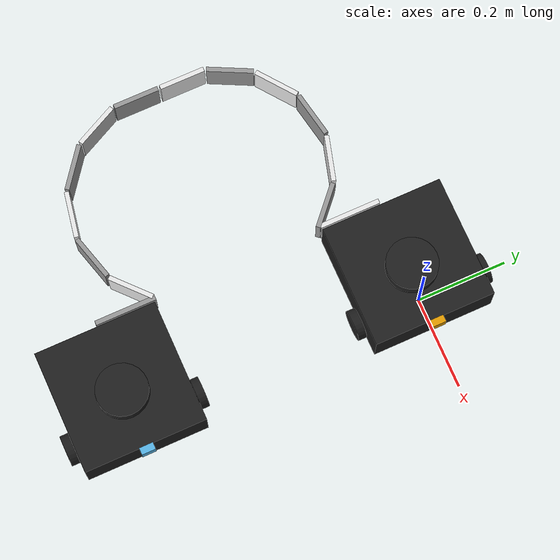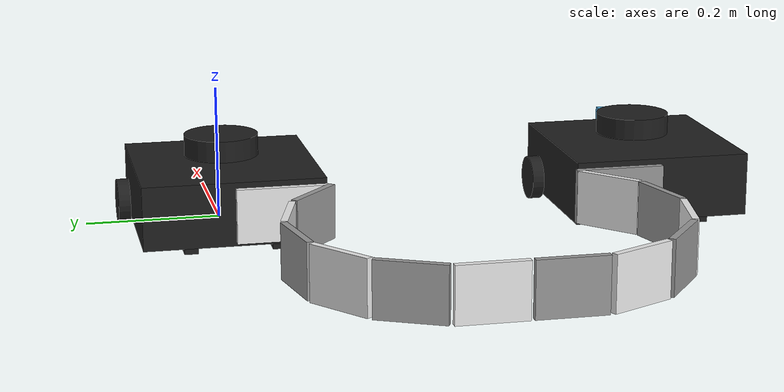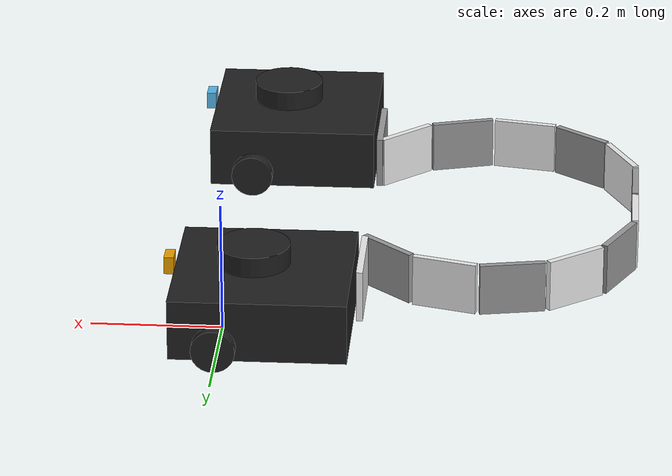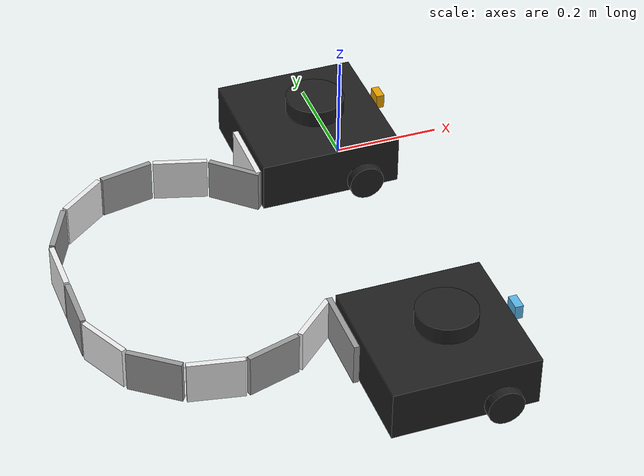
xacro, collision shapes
<?xml version="1.0"?>
<robot name="tethered_turtle" xmlns:xacro="http://ros.org/wiki/xacro">
  <xacro:include filename="$(find turtlebot3_description)/urdf/common_properties.xacro"/>
  <xacro:include filename="$(find turtlebot3_gazebo)/urdf/tethered_turtle.gazebo.xacro"/>
  <xacro:property name="stick_mass" value="0.0005"/> <!-- mass of the stick-->
  <xacro:property name="stick_depth" value="0.01"/>
  <xacro:property name="stick_width" value="0.1"/>
  <xacro:property name="stick_height" value="0.08"/>
  <xacro:property name="rotation_limit" value="3.1415926"/>
  <xacro:property name="effort_limit" value="30"/>
  <xacro:property name="velocity_limit" value="3.1415926"/>
  <xacro:property name="stick_damping" value="0.00001"/>
  <xacro:property name="safety_offset" value="0.005"/>
  <xacro:property name="theta_1" value="-2.306898"/>
  <xacro:property name="theta_2" value="0.4613795775735"/>

  <xacro:macro name="stick2stick" params="name_1 name_2 rotation_angle">
    <joint name="${name_1}_${name_2}" type="revolute">
      <parent link="${name_1}"/>
      <child link="${name_2}"/>
      <origin xyz="0 ${-(stick_width + safety_offset)} 0" rpy="0 0 ${rotation_angle}"/>
      <axis xyz="0 0 1"/>
      <limit lower="${-1.0 * rotation_limit}" upper="${rotation_limit}" effort="${effort_limit}" velocity="${velocity_limit}"/>
      <dynamics damping="${stick_damping}"/>
    </joint>

    <link name="${name_2}">
      <visual>
        <geometry>
	        <box size="${stick_depth} ${stick_width} ${stick_height}"/>
        </geometry>
        <origin xyz="0 ${-(stick_width / 2.0)} 0" rpy="0 0 0"/>
      </visual>

      <collision>
        <origin xyz="0 ${-(stick_width / 2.0)} 0" rpy="0 0 0"/>
        <geometry>
	        <box size="${stick_depth} ${stick_width} ${stick_height}"/>
        </geometry>
      </collision>

      <inertial>
        <origin xyz="0 ${-(stick_width / 2.0)} 0" rpy="0 0 0"/>
        <mass value="${stick_mass}"/>
        <inertia
	        ixx="${stick_mass / 12.0 * (stick_width*stick_width + stick_height*stick_height)}" ixy="0.0" ixz="0.0"
          iyy="${stick_mass / 12.0 * (stick_depth*stick_depth + stick_height*stick_height)}" iyz="0.0"
	        izz="${stick_mass / 12.0 * (stick_width*stick_width + stick_depth*stick_depth)}"/>
      </inertial>
    </link>
  </xacro:macro>

<!-- Turtle1 -->
  <link name="turtle1/base_footprint"/>

  <joint name="turtle1/base_joint" type="fixed">
    <parent link="turtle1/base_footprint"/>
    <child link="turtle1/base_link" />
    <origin xyz="0 0 0.010" rpy="0 0 0"/>
  </joint>

  <link name="turtle1/base_link">
    <visual>
      <origin xyz="-0.064 0 0.0" rpy="0 0 0"/>
      <geometry>
        <mesh filename="package://turtlebot3_description/meshes/bases/waffle_pi_base.stl" scale="0.001 0.001 0.001"/>
      </geometry>
      <material name="light_black"/>
    </visual>

    <collision>
      <origin xyz="-0.064 0 0.047" rpy="0 0 0"/>
      <geometry>
        <box size="0.266 0.266 0.094"/>
      </geometry>
    </collision>

    <inertial>
      <origin xyz="-0.02 0 0" rpy="0 0 0"/>
      <mass value="1.3729096e+00"/>
      <inertia ixx="8.7002718e-03" ixy="-4.7576583e-05" ixz="1.1160499e-04"
               iyy="8.6195418e-03" iyz="-3.5422299e-06"
               izz="1.4612727e-02" />
    </inertial>
  </link>

  <joint name="turtle1/wheel_left_joint" type="continuous">
    <parent link="turtle1/base_link"/>
    <child link="turtle1/wheel_left_link"/>
    <origin xyz="0.0 0.144 0.023" rpy="-1.57 0 0"/>
    <axis xyz="0 0 1"/>
  </joint>

  <transmission name="turtle1/wheel_left_trans">
    <type>transmission_interface/SimpleTransmission</type>
    <joint name="turtle1/wheel_left_joint">
      <hardwareInterface>hardware_interface/EffortJointInterface</hardwareInterface>
    </joint>
    <actuator name="turtle1/wheel_left_joint_motor">
      <hardwareInterface>hardware_interface/EffortJointInterface</hardwareInterface>
      <mechanicalReduction>1</mechanicalReduction>
    </actuator>
  </transmission>

  <link name="turtle1/wheel_left_link">
    <visual>
      <origin xyz="0 0 0" rpy="1.57 0 0"/>
      <geometry>
        <mesh filename="package://turtlebot3_description/meshes/wheels/left_tire.stl" scale="0.001 0.001 0.001"/>
      </geometry>
      <material name="dark"/>
    </visual>

    <collision>
      <origin xyz="0 0 0" rpy="0 0 0"/>
      <geometry>
        <cylinder length="0.018" radius="0.033"/>
      </geometry>
    </collision>

    <inertial>
      <origin xyz="0 0 0" />
      <mass value="2.8498940e-02" />
      <inertia ixx="1.1175580e-05" ixy="-4.2369783e-11" ixz="-5.9381719e-09"
               iyy="1.1192413e-05" iyz="-1.4400107e-11"
               izz="2.0712558e-05" />
      </inertial>
  </link>

  <joint name="turtle1/wheel_right_joint" type="continuous">
    <parent link="turtle1/base_link"/>
    <child link="turtle1/wheel_right_link"/>
    <origin xyz="0.0 -0.144 0.023" rpy="-1.57 0 0"/>
    <axis xyz="0 0 1"/>
  </joint>

  <transmission name="turtle1/wheel_right_trans">
    <type>transmission_interface/SimpleTransmission</type>
    <joint name="turtle1/wheel_right_joint">
      <hardwareInterface>hardware_interface/EffortJointInterface</hardwareInterface>
    </joint>
    <actuator name="turtle1/wheel_right_joint_motor">
      <hardwareInterface>hardware_interface/EffortJointInterface</hardwareInterface>
      <mechanicalReduction>1</mechanicalReduction>
    </actuator>
  </transmission>

  <link name="turtle1/wheel_right_link">
    <visual>
      <origin xyz="0 0 0" rpy="1.57 0 0"/>
      <geometry>
        <mesh filename="package://turtlebot3_description/meshes/wheels/right_tire.stl" scale="0.001 0.001 0.001"/>
      </geometry>
      <material name="dark"/>
    </visual>

    <collision>
      <origin xyz="0 0 0" rpy="0 0 0"/>
      <geometry>
        <cylinder length="0.018" radius="0.033"/>
      </geometry>
    </collision>

    <inertial>
      <origin xyz="0 0 0" />
      <mass value="2.8498940e-02" />
      <inertia ixx="1.1175580e-05" ixy="-4.2369783e-11" ixz="-5.9381719e-09"
               iyy="1.1192413e-05" iyz="-1.4400107e-11"
               izz="2.0712558e-05" />
      </inertial>
  </link>

  <joint name="turtle1/caster_back_right_joint" type="fixed">
    <parent link="turtle1/base_link"/>
    <child link="turtle1/caster_back_right_link"/>
    <origin xyz="-0.177 -0.064 -0.004" rpy="-1.57 0 0"/>
  </joint>

  <link name="turtle1/caster_back_right_link">
    <collision>
      <origin xyz="0 0.001 0" rpy="0 0 0"/>
      <geometry>
        <box size="0.030 0.009 0.020"/>
      </geometry>
    </collision>

    <inertial>
      <origin xyz="0 0 0" />
      <mass value="0.005" />
      <inertia ixx="0.001" ixy="0.0" ixz="0.0"
               iyy="0.001" iyz="0.0"
               izz="0.001" />
    </inertial>
  </link>

  <joint name="turtle1/caster_back_left_joint" type="fixed">
    <parent link="turtle1/base_link"/>
    <child link="turtle1/caster_back_left_link"/>
    <origin xyz="-0.177 0.064 -0.004" rpy="-1.57 0 0"/>
  </joint>

  <link name="turtle1/caster_back_left_link">
    <collision>
      <origin xyz="0 0.001 0" rpy="0 0 0"/>
      <geometry>
        <box size="0.030 0.009 0.020"/>
      </geometry>
    </collision>

    <inertial>
      <origin xyz="0 0 0" />
      <mass value="0.005" />
      <inertia ixx="0.001" ixy="0.0" ixz="0.0"
               iyy="0.001" iyz="0.0"
               izz="0.001" />
    </inertial>
  </link>

  <joint name="turtle1/imu_joint" type="fixed">
    <parent link="turtle1/base_link"/>
    <child link="turtle1/imu_link"/>
    <origin xyz="0.0 0 0.068" rpy="0 0 0"/>
  </joint>

  <link name="turtle1/imu_link"/>

  <joint name="turtle1/scan_joint" type="fixed">
    <parent link="turtle1/base_link"/>
    <child link="turtle1/base_scan"/>
    <origin xyz="-0.064 0 0.122" rpy="0 0 0"/>
  </joint>

  <link name="turtle1/base_scan">
    <visual>
      <origin xyz="0 0 0.0" rpy="0 0 0"/>
      <geometry>
        <mesh filename="package://turtlebot3_description/meshes/sensors/lds.stl" scale="0.001 0.001 0.001"/>
      </geometry>
      <material name="dark"/>
    </visual>

    <collision>
      <origin xyz="0.015 0 -0.0065" rpy="0 0 0"/>
      <geometry>
        <cylinder length="0.0315" radius="0.055"/>
      </geometry>
    </collision>

    <inertial>
      <mass value="0.114" />
      <origin xyz="0 0 0" />
      <inertia ixx="0.001" ixy="0.0" ixz="0.0"
               iyy="0.001" iyz="0.0"
               izz="0.001" />
    </inertial>
  </link>

  <joint name="turtle1/camera_joint" type="fixed">
    <origin xyz="0.073 -0.011 0.084" rpy="0 0 0"/>
    <parent link="turtle1/base_link"/>
    <child link="turtle1/camera_link"/>
  </joint>

  <link name="turtle1/camera_link">
    <collision>
      <origin xyz="0.005 0.011 0.013" rpy="0 0 0"/>
      <geometry>
        <box size="0.015 0.030 0.027"/>
      </geometry>
    </collision>
  </link>

  <joint name="turtle1/camera_rgb_joint" type="fixed">
    <origin xyz="0.003 0.011 0.009" rpy="0 0 0"/>
    <parent link="turtle1/camera_link"/>
    <child link="turtle1/camera_rgb_frame"/>
  </joint>
  <link name="turtle1/camera_rgb_frame"/>

  <joint name="turtle1/camera_rgb_optical_joint" type="fixed">
    <origin xyz="0 0 0" rpy="-1.57 0 -1.57"/>
    <parent link="turtle1/camera_rgb_frame"/>
    <child link="turtle1/camera_rgb_optical_frame"/>
  </joint>
  <link name="turtle1/camera_rgb_optical_frame"/>

  <!--Sticks in between-->
  <joint name="turtle1_stick1" type="revolute">
    <parent link="turtle1/base_footprint"/>
    <child link="stick1"/>
    <origin xyz="${-0.064 - 0.133 - safety_offset - stick_depth/2.0} 0 0.057" rpy="0 0 0"/>
    <axis xyz="0 0 1"/>
    <limit lower="0" upper="0" effort="${effort_limit}" velocity="${velocity_limit}"/>
    <dynamics damping="${stick_damping}"/>
  </joint>

  <link name="stick1">
    <visual>
      <geometry>
	      <box size="${stick_depth} 0.133 ${stick_height}"/>
      </geometry>
      <origin xyz="0 -0.0665 0" rpy="0 0 0"/>
    </visual>
    <collision>
      <origin xyz="0 -0.0665 0" rpy="0 0 0"/>
      <geometry>
	      <box size="${stick_depth} 0.133 ${stick_height}"/>
      </geometry>
    </collision>
    <inertial>
      <origin xyz="0 -0.0665 0" rpy="0 0 0"/>
      <mass value="${stick_mass}"/>
      <inertia
	        ixx="${stick_mass / 12.0 * (stick_width*stick_width + stick_height*stick_height)}" ixy="0.0" ixz="0.0"
          iyy="${stick_mass / 12.0 * (stick_depth*stick_depth + stick_height*stick_height)}" iyz="0.0"
	        izz="${stick_mass / 12.0 * (stick_width*stick_width + stick_depth*stick_depth)}"/>
    </inertial>
  </link>

  <joint name="stick1_stick2" type="revolute">
    <parent link="stick1"/>
    <child link="stick2"/>
    <origin xyz="0 ${-(0.133 + safety_offset)} 0" rpy="0 0 ${theta_1}"/>
    <axis xyz="0 0 1"/>
    <limit lower="${-1.0*rotation_limit}" upper="${rotation_limit}" effort="${effort_limit}" velocity="${velocity_limit}"/>
    <dynamics damping="${stick_damping}"/>
  </joint>

  <link name="stick2">
    <visual>
      <geometry>
	      <box size="${stick_depth} ${stick_width} ${stick_height}"/>
      </geometry>
      <origin xyz="0 ${-(stick_width / 2.0)} 0" rpy="0 0 0"/>
    </visual>

    <collision>
      <origin xyz="0 ${-(stick_width / 2.0)} 0" rpy="0 0 0"/>
      <geometry>
	      <box size="${stick_depth} ${stick_width} ${stick_height}"/>
      </geometry>
    </collision>

    <inertial>
      <origin xyz="0 ${-(stick_width / 2.0)} 0" rpy="0 0 0"/>
      <mass value="${stick_mass}"/>
      <inertia
	      ixx="${stick_mass / 12.0 * (stick_width*stick_width + stick_height*stick_height)}" ixy="0.0" ixz="0.0"
        iyy="${stick_mass / 12.0 * (stick_depth*stick_depth + stick_height*stick_height)}" iyz="0.0"
	      izz="${stick_mass / 12.0 * (stick_width*stick_width + stick_depth*stick_depth)}"/>
    </inertial>
  </link>

  <xacro:stick2stick name_1="stick2" name_2="stick3" rotation_angle="${theta_2}"/>
  <xacro:stick2stick name_1="stick3" name_2="stick4" rotation_angle="${theta_2}"/>
  <xacro:stick2stick name_1="stick4" name_2="stick5" rotation_angle="${theta_2}"/>
  <xacro:stick2stick name_1="stick5" name_2="stick6" rotation_angle="${theta_2}"/>
  <xacro:stick2stick name_1="stick6" name_2="stick7" rotation_angle="${theta_2}"/>
  <xacro:stick2stick name_1="stick7" name_2="stick8" rotation_angle="0"/>
  <xacro:stick2stick name_1="stick8" name_2="stick9" rotation_angle="${theta_2}"/>
  <xacro:stick2stick name_1="stick9" name_2="stick10" rotation_angle="${theta_2}"/>
  <xacro:stick2stick name_1="stick10" name_2="stick11" rotation_angle="${theta_2}"/>
  <xacro:stick2stick name_1="stick11" name_2="stick12" rotation_angle="${theta_2}"/>
  <xacro:stick2stick name_1="stick12" name_2="stick13" rotation_angle="${theta_2}"/>

  <joint name="stick13_stick14" type="revolute">
    <parent link="stick13"/>
    <child link="stick14"/>
    <origin xyz="0 ${-(stick_width + safety_offset)} 0" rpy="0 0 ${theta_1}"/>
    <axis xyz="0 0 1"/>
    <limit lower="${-1.0 * rotation_limit}" upper="${rotation_limit}" effort="${effort_limit}" velocity="${velocity_limit}"/>
    <dynamics damping="${stick_damping}"/>
  </joint>

  <link name="stick14">
    <visual>
      <geometry>
	      <box size="${stick_depth} 0.133 ${stick_height}"/>
      </geometry>
      <origin xyz="0 -0.0665 0" rpy="0 0 0"/>
    </visual>
    <collision>
      <origin xyz="0 -0.0665 0" rpy="0 0 0"/>
      <geometry>
	      <box size="${stick_depth} 0.133 ${stick_height}"/>
      </geometry>
    </collision>
    <inertial>
      <origin xyz="0 -0.0665 0" rpy="0 0 0"/>
      <mass value="${stick_mass}"/>
      <inertia
	        ixx="${stick_mass / 12.0 * (stick_width*stick_width + stick_height*stick_height)}" ixy="0.0" ixz="0.0"
          iyy="${stick_mass / 12.0 * (stick_depth*stick_depth + stick_height*stick_height)}" iyz="0.0"
	        izz="${stick_mass / 12.0 * (stick_width*stick_width + stick_depth*stick_depth)}"/>
    </inertial>
  </link>

  <joint name="stick14_turtle2" type="revolute">
    <parent link="stick14"/>
    <child link="turtle2/base_footprint"/>
    <origin xyz="${0.064 + 0.133 + safety_offset + stick_depth/2.0} ${-(0.133 + safety_offset)} -0.057"/>
    <axis xyz="0 0 1"/>
    <limit lower="0" upper="0" effort="${effort_limit}" velocity="${velocity_limit}"/>
    <dynamics damping="${stick_damping}"/>
  </joint>

<!--Turtle2-->
  <link name="turtle2/base_footprint"/>

  <joint name="turtle2/base_joint" type="fixed">
    <parent link="turtle2/base_footprint"/>
    <child link="turtle2/base_link" />
    <origin xyz="0 0 0.010" rpy="0 0 0"/>
  </joint>

  <link name="turtle2/base_link">
    <visual>
      <origin xyz="-0.064 0 0.0" rpy="0 0 0"/>
      <geometry>
        <mesh filename="package://turtlebot3_description/meshes/bases/waffle_pi_base.stl" scale="0.001 0.001 0.001"/>
      </geometry>
      <material name="light_black"/>
    </visual>

    <collision>
      <origin xyz="-0.064 0 0.047" rpy="0 0 0"/>
      <geometry>
        <box size="0.266 0.266 0.094"/>
      </geometry>
    </collision>

    <inertial>
      <origin xyz="-0.02 0 0" rpy="0 0 0"/>
      <mass value="1.3729096e+00"/>
      <inertia ixx="8.7002718e-03" ixy="-4.7576583e-05" ixz="1.1160499e-04"
               iyy="8.6195418e-03" iyz="-3.5422299e-06"
               izz="1.4612727e-02" />
    </inertial>
  </link>

  <joint name="turtle2/wheel_left_joint" type="continuous">
    <parent link="turtle2/base_link"/>
    <child link="turtle2/wheel_left_link"/>
    <origin xyz="0.0 0.144 0.023" rpy="-1.57 0 0"/>
    <axis xyz="0 0 1"/>
  </joint>

  <transmission name="turtle2/wheel_left_trans">
    <type>transmission_interface/SimpleTransmission</type>
    <joint name="turtle2/wheel_left_joint">
      <hardwareInterface>hardware_interface/EffortJointInterface</hardwareInterface>
    </joint>
    <actuator name="turtle2/wheel_left_joint_motor">
      <hardwareInterface>hardware_interface/EffortJointInterface</hardwareInterface>
      <mechanicalReduction>1</mechanicalReduction>
    </actuator>
  </transmission>

  <link name="turtle2/wheel_left_link">
    <visual>
      <origin xyz="0 0 0" rpy="1.57 0 0"/>
      <geometry>
        <mesh filename="package://turtlebot3_description/meshes/wheels/left_tire.stl" scale="0.001 0.001 0.001"/>
      </geometry>
      <material name="dark"/>
    </visual>

    <collision>
      <origin xyz="0 0 0" rpy="0 0 0"/>
      <geometry>
        <cylinder length="0.018" radius="0.033"/>
      </geometry>
    </collision>

    <inertial>
      <origin xyz="0 0 0" />
      <mass value="2.8498940e-02" />
      <inertia ixx="1.1175580e-05" ixy="-4.2369783e-11" ixz="-5.9381719e-09"
               iyy="1.1192413e-05" iyz="-1.4400107e-11"
               izz="2.0712558e-05" />
      </inertial>
  </link>

  <joint name="turtle2/wheel_right_joint" type="continuous">
    <parent link="turtle2/base_link"/>
    <child link="turtle2/wheel_right_link"/>
    <origin xyz="0.0 -0.144 0.023" rpy="-1.57 0 0"/>
    <axis xyz="0 0 1"/>
  </joint>

  <transmission name="turtle2/wheel_right_trans">
    <type>transmission_interface/SimpleTransmission</type>
    <joint name="turtle2/wheel_right_joint">
      <hardwareInterface>hardware_interface/EffortJointInterface</hardwareInterface>
    </joint>
    <actuator name="turtle2/wheel_right_joint_motor">
      <hardwareInterface>hardware_interface/EffortJointInterface</hardwareInterface>
      <mechanicalReduction>1</mechanicalReduction>
    </actuator>
  </transmission>

  <link name="turtle2/wheel_right_link">
    <visual>
      <origin xyz="0 0 0" rpy="1.57 0 0"/>
      <geometry>
        <mesh filename="package://turtlebot3_description/meshes/wheels/right_tire.stl" scale="0.001 0.001 0.001"/>
      </geometry>
      <material name="dark"/>
    </visual>

    <collision>
      <origin xyz="0 0 0" rpy="0 0 0"/>
      <geometry>
        <cylinder length="0.018" radius="0.033"/>
      </geometry>
    </collision>

    <inertial>
      <origin xyz="0 0 0" />
      <mass value="2.8498940e-02" />
      <inertia ixx="1.1175580e-05" ixy="-4.2369783e-11" ixz="-5.9381719e-09"
               iyy="1.1192413e-05" iyz="-1.4400107e-11"
               izz="2.0712558e-05" />
      </inertial>
  </link>

  <joint name="turtle2/caster_back_right_joint" type="fixed">
    <parent link="turtle2/base_link"/>
    <child link="turtle2/caster_back_right_link"/>
    <origin xyz="-0.177 -0.064 -0.004" rpy="-1.57 0 0"/>
  </joint>

  <link name="turtle2/caster_back_right_link">
    <collision>
      <origin xyz="0 0.001 0" rpy="0 0 0"/>
      <geometry>
        <box size="0.030 0.009 0.020"/>
      </geometry>
    </collision>

    <inertial>
      <origin xyz="0 0 0" />
      <mass value="0.005" />
      <inertia ixx="0.001" ixy="0.0" ixz="0.0"
               iyy="0.001" iyz="0.0"
               izz="0.001" />
    </inertial>
  </link>

  <joint name="turtle2/caster_back_left_joint" type="fixed">
    <parent link="turtle2/base_link"/>
    <child link="turtle2/caster_back_left_link"/>
    <origin xyz="-0.177 0.064 -0.004" rpy="-1.57 0 0"/>
  </joint>

  <link name="turtle2/caster_back_left_link">
    <collision>
      <origin xyz="0 0.001 0" rpy="0 0 0"/>
      <geometry>
        <box size="0.030 0.009 0.020"/>
      </geometry>
    </collision>

    <inertial>
      <origin xyz="0 0 0" />
      <mass value="0.005" />
      <inertia ixx="0.001" ixy="0.0" ixz="0.0"
               iyy="0.001" iyz="0.0"
               izz="0.001" />
    </inertial>
  </link>

  <joint name="turtle2/imu_joint" type="fixed">
    <parent link="turtle2/base_link"/>
    <child link="turtle2/imu_link"/>
    <origin xyz="0.0 0 0.068" rpy="0 0 0"/>
  </joint>

  <link name="turtle2/imu_link"/>

  <joint name="turtle2/scan_joint" type="fixed">
    <parent link="turtle2/base_link"/>
    <child link="turtle2/base_scan"/>
    <origin xyz="-0.064 0 0.122" rpy="0 0 0"/>
  </joint>

  <link name="turtle2/base_scan">
    <visual>
      <origin xyz="0 0 0.0" rpy="0 0 0"/>
      <geometry>
        <mesh filename="package://turtlebot3_description/meshes/sensors/lds.stl" scale="0.001 0.001 0.001"/>
      </geometry>
      <material name="dark"/>
    </visual>

    <collision>
      <origin xyz="0.015 0 -0.0065" rpy="0 0 0"/>
      <geometry>
        <cylinder length="0.0315" radius="0.055"/>
      </geometry>
    </collision>

    <inertial>
      <mass value="0.114" />
      <origin xyz="0 0 0" />
      <inertia ixx="0.001" ixy="0.0" ixz="0.0"
               iyy="0.001" iyz="0.0"
               izz="0.001" />
    </inertial>
  </link>

  <joint name="turtle2/camera_joint" type="fixed">
    <origin xyz="0.073 -0.011 0.084" rpy="0 0 0"/>
    <parent link="turtle2/base_link"/>
    <child link="turtle2/camera_link"/>
  </joint>

  <link name="turtle2/camera_link">
    <collision>
      <origin xyz="0.005 0.011 0.013" rpy="0 0 0"/>
      <geometry>
        <box size="0.015 0.030 0.027"/>
      </geometry>
    </collision>
  </link>

  <joint name="turtle2/camera_rgb_joint" type="fixed">
    <origin xyz="0.003 0.011 0.009" rpy="0 0 0"/>
    <parent link="turtle2/camera_link"/>
    <child link="turtle2/camera_rgb_frame"/>
  </joint>
  <link name="turtle2/camera_rgb_frame"/>

  <joint name="turtle2/camera_rgb_optical_joint" type="fixed">
    <origin xyz="0 0 0" rpy="-1.57 0 -1.57"/>
    <parent link="turtle2/camera_rgb_frame"/>
    <child link="turtle2/camera_rgb_optical_frame"/>
  </joint>
  <link name="turtle2/camera_rgb_optical_frame"/>

  <gazebo reference="stick1">
    <material>Gazebo/White</material>
    <selfCollide>true</selfCollide>
  </gazebo>
  <gazebo reference="stick2">
    <material>Gazebo/Grey</material>
    <selfCollide>true</selfCollide>
  </gazebo>
  <gazebo reference="stick3">
    <material>Gazebo/White</material>
    <selfCollide>true</selfCollide>
  </gazebo>
  <gazebo reference="stick4">
    <material>Gazebo/Grey</material>
    <selfCollide>true</selfCollide>
  </gazebo>
  <gazebo reference="stick5">
    <material>Gazebo/White</material>
    <selfCollide>true</selfCollide>
  </gazebo>
  <gazebo reference="stick6">
    <material>Gazebo/Grey</material>
    <selfCollide>true</selfCollide>
  </gazebo>
  <gazebo reference="stick7">
    <material>Gazebo/White</material>
    <selfCollide>true</selfCollide>
  </gazebo>
  <gazebo reference="stick8">
    <material>Gazebo/Grey</material>
    <selfCollide>true</selfCollide>
  </gazebo>
  <gazebo reference="stick9">
    <material>Gazebo/White</material>
    <selfCollide>true</selfCollide>
  </gazebo>
  <gazebo reference="stick10">
    <material>Gazebo/Grey</material>
    <selfCollide>true</selfCollide>
  </gazebo>
  <gazebo reference="stick11">
    <material>Gazebo/White</material>
    <selfCollide>true</selfCollide>
  </gazebo>
  <gazebo reference="stick12">
    <material>Gazebo/Grey</material>
    <selfCollide>true</selfCollide>
  </gazebo>
  <gazebo reference="stick13">
    <material>Gazebo/White</material>
    <selfCollide>true</selfCollide>
  </gazebo>
  <gazebo reference="stick14">
    <material>Gazebo/Grey</material>
    <selfCollide>true</selfCollide>
  </gazebo>
</robot>
